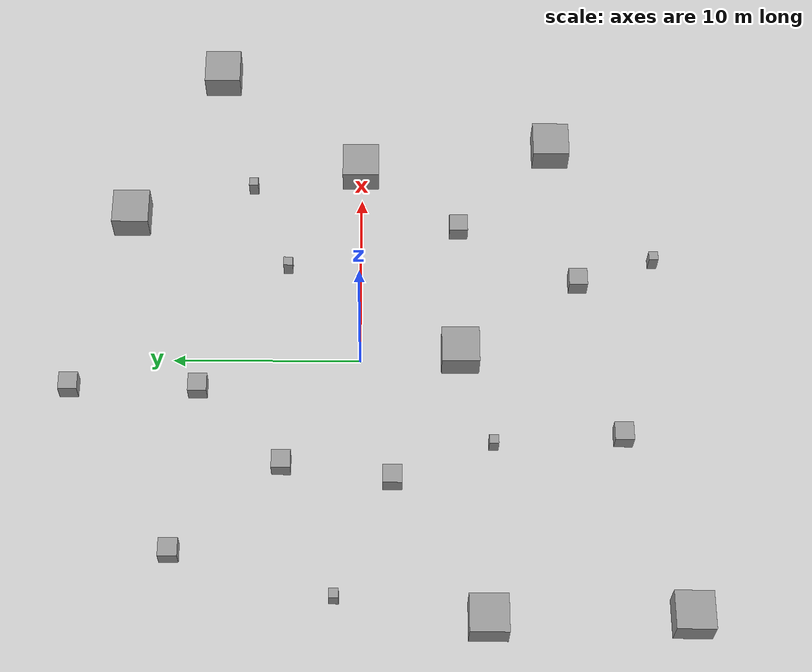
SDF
<sdf version="1.6">
 <world name="default">
  <light name="sun" type="directional">
   <pose>0 0 10 0 -0 0</pose>
   <diffuse>0.8 0.8 0.8 1</diffuse>
   <specular>0.2 0.2 0.2 1</specular>
   <attenuation>
    <range>1000</range>
    <constant>0.9</constant>
    <linear>0.01</linear>
    <quadratic>0.001</quadratic>
   </attenuation>
   <direction>-0.5 0.1 -0.9</direction>
  </light>
  <model name="ground_plane">
   <static>1</static>
   <link name="link">
    <collision name="collision">
     <geometry><plane><normal>0 0 1</normal><size>100 100</size></plane></geometry>
     <surface>
      <contact><collide_bitmask>65535</collide_bitmask></contact>
      <friction><ode><mu>100</mu><mu2>50</mu2></ode></friction>
     </surface>
    </collision>
    <visual name="visual">
     <cast_shadows>0</cast_shadows>
     <geometry><plane><normal>0 0 1</normal><size>100 100</size></plane></geometry>
     <material>
      <script><uri>file://media/materials/scripts/gazebo.material</uri><name>Gazebo/Grey</name></script>
     </material>
    </visual>
   </link>
  </model>
  <gravity>0 0 -9.8</gravity>
  <magnetic_field>6e-06 2.3e-05 -4.2e-05</magnetic_field>
  <atmosphere type="adiabatic"/>
  <physics name="default_physics" default="0" type="ode">
   <max_step_size>0.001</max_step_size>
   <real_time_factor>1</real_time_factor>
   <real_time_update_rate>1000</real_time_update_rate>
  </physics>
  <scene><ambient>0.4 0.4 0.4 1</ambient><background>0.7 0.7 0.7 1</background><shadows>1</shadows></scene>
  <audio><device>default</device></audio>
  <spherical_coordinates>
   <surface_model>EARTH_WGS84</surface_model>
   <latitude_deg>0</latitude_deg>
   <longitude_deg>0</longitude_deg>
   <elevation>0</elevation>
   <heading_deg>0</heading_deg>
  </spherical_coordinates>
  <model name="2x2_cube">
   <link name="link">
    <inertial>
     <mass>1</mass>
     <inertia>
      <ixx>0.166667</ixx>
      <ixy>0</ixy>
      <ixz>0</ixz>
      <iyy>0.166667</iyy>
      <iyz>0</iyz>
      <izz>0.166667</izz>
     </inertia>
    </inertial>
    <visual name="visual">
     <geometry><box><size>2 2 2</size></box></geometry>
     <material>
      <script><name>Gazebo/Grey</name><uri>file://media/materials/scripts/gazebo.material</uri></script>
      <shader type="vertex"><normal_map>__default__</normal_map></shader>
      <ambient>0.3 0.3 0.3 1</ambient>
      <diffuse>0.7 0.7 0.7 1</diffuse>
      <specular>0.01 0.01 0.01 1</specular>
      <emissive>0 0 0 1</emissive>
     </material>
    </visual>
    <collision name="collision">
     <geometry><box><size>1 1 1</size></box></geometry>
     <surface>
      <friction>
       <ode><mu>1</mu><mu2>1</mu2><fdir1>0 0 0</fdir1><slip1>0</slip1><slip2>0</slip2></ode>
       <torsional>
        <coefficient>1</coefficient>
        <patch_radius>0</patch_radius>
        <surface_radius>0</surface_radius>
        <use_patch_radius>1</use_patch_radius>
        <ode><slip>0</slip></ode>
       </torsional>
      </friction>
      <bounce><restitution_coefficient>0</restitution_coefficient><threshold>1e+06</threshold></bounce>
      <contact>
       <collide_without_contact>0</collide_without_contact>
       <collide_without_contact_bitmask>1</collide_without_contact_bitmask>
       <collide_bitmask>1</collide_bitmask>
       <ode>
        <soft_cfm>0</soft_cfm>
        <soft_erp>0.2</soft_erp>
        <kp>1e+13</kp>
        <kd>1</kd>
        <max_vel>0.01</max_vel>
        <min_depth>0</min_depth>
       </ode>
       <bullet>
        <split_impulse>1</split_impulse>
        <split_impulse_penetration_threshold>-0.01</split_impulse_penetration_threshold>
        <soft_cfm>0</soft_cfm>
        <soft_erp>0.2</soft_erp>
        <kp>1e+13</kp>
        <kd>1</kd>
       </bullet>
      </contact>
     </surface>
    </collision>
   </link>
   <static>0</static>
   <pose>0.362319 -5.31285 0.5 0 -0 0</pose>
  </model>
  <model name="2x2_cube_0">
   <link name="link">
    <inertial>
     <mass>1</mass>
     <inertia>
      <ixx>0.166667</ixx>
      <ixy>0</ixy>
      <ixz>0</ixz>
      <iyy>0.166667</iyy>
      <iyz>0</iyz>
      <izz>0.166667</izz>
     </inertia>
    </inertial>
    <visual name="visual">
     <geometry><box><size>2 2 2</size></box></geometry>
     <material>
      <script><name>Gazebo/Grey</name><uri>file://media/materials/scripts/gazebo.material</uri></script>
      <shader type="vertex"><normal_map>__default__</normal_map></shader>
      <ambient>0.3 0.3 0.3 1</ambient>
      <diffuse>0.7 0.7 0.7 1</diffuse>
      <specular>0.01 0.01 0.01 1</specular>
      <emissive>0 0 0 1</emissive>
     </material>
    </visual>
    <collision name="collision">
     <geometry><box><size>1 1 1</size></box></geometry>
     <surface>
      <friction>
       <ode><mu>1</mu><mu2>1</mu2><fdir1>0 0 0</fdir1><slip1>0</slip1><slip2>0</slip2></ode>
       <torsional>
        <coefficient>1</coefficient>
        <patch_radius>0</patch_radius>
        <surface_radius>0</surface_radius>
        <use_patch_radius>1</use_patch_radius>
        <ode><slip>0</slip></ode>
       </torsional>
      </friction>
      <bounce><restitution_coefficient>0</restitution_coefficient><threshold>1e+06</threshold></bounce>
      <contact>
       <collide_without_contact>0</collide_without_contact>
       <collide_without_contact_bitmask>1</collide_without_contact_bitmask>
       <collide_bitmask>1</collide_bitmask>
       <ode>
        <soft_cfm>0</soft_cfm>
        <soft_erp>0.2</soft_erp>
        <kp>1e+13</kp>
        <kd>1</kd>
        <max_vel>0.01</max_vel>
        <min_depth>0</min_depth>
       </ode>
       <bullet>
        <split_impulse>1</split_impulse>
        <split_impulse_penetration_threshold>-0.01</split_impulse_penetration_threshold>
        <soft_cfm>0</soft_cfm>
        <soft_erp>0.2</soft_erp>
        <kp>1e+13</kp>
        <kd>1</kd>
       </bullet>
      </contact>
     </surface>
    </collision>
   </link>
   <static>0</static>
   <pose>11.8545 0.083359 0.5 0 -0 0</pose>
  </model>
  <model name="0.5x0.5_cube">
   <link name="link">
    <inertial>
     <mass>1</mass>
     <inertia>
      <ixx>0.166667</ixx>
      <ixy>0</ixy>
      <ixz>0</ixz>
      <iyy>0.166667</iyy>
      <iyz>0</iyz>
      <izz>0.166667</izz>
     </inertia>
    </inertial>
    <visual name="visual">
     <geometry><box><size>0.5 0.5 1</size></box></geometry>
     <material>
      <script><name>Gazebo/Grey</name><uri>file://media/materials/scripts/gazebo.material</uri></script>
      <shader type="vertex"><normal_map>__default__</normal_map></shader>
      <ambient>0.3 0.3 0.3 1</ambient>
      <diffuse>0.7 0.7 0.7 1</diffuse>
      <specular>0.01 0.01 0.01 1</specular>
      <emissive>0 0 0 1</emissive>
     </material>
    </visual>
    <collision name="collision">
     <geometry><box><size>1 1 1</size></box></geometry>
     <surface>
      <friction>
       <ode><mu>1</mu><mu2>1</mu2><fdir1>0 0 0</fdir1><slip1>0</slip1><slip2>0</slip2></ode>
       <torsional>
        <coefficient>1</coefficient>
        <patch_radius>0</patch_radius>
        <surface_radius>0</surface_radius>
        <use_patch_radius>1</use_patch_radius>
        <ode><slip>0</slip></ode>
       </torsional>
      </friction>
      <bounce><restitution_coefficient>0</restitution_coefficient><threshold>1e+06</threshold></bounce>
      <contact>
       <collide_without_contact>0</collide_without_contact>
       <collide_without_contact_bitmask>1</collide_without_contact_bitmask>
       <collide_bitmask>1</collide_bitmask>
       <ode>
        <soft_cfm>0</soft_cfm>
        <soft_erp>0.2</soft_erp>
        <kp>1e+13</kp>
        <kd>1</kd>
        <max_vel>0.01</max_vel>
        <min_depth>0</min_depth>
       </ode>
       <bullet>
        <split_impulse>1</split_impulse>
        <split_impulse_penetration_threshold>-0.01</split_impulse_penetration_threshold>
        <soft_cfm>0</soft_cfm>
        <soft_erp>0.2</soft_erp>
        <kp>1e+13</kp>
        <kd>1</kd>
       </bullet>
      </contact>
     </surface>
    </collision>
   </link>
   <static>0</static>
   <pose>5.6297 3.99486 0.5 0 -0 0</pose>
  </model>
  <model name="unit_box">
   <pose>-6.86727 -1.70164 0.5 0 -0 0</pose>
   <link name="link">
    <inertial>
     <mass>1</mass>
     <inertia>
      <ixx>0.166667</ixx>
      <ixy>0</ixy>
      <ixz>0</ixz>
      <iyy>0.166667</iyy>
      <iyz>0</iyz>
      <izz>0.166667</izz>
     </inertia>
    </inertial>
    <collision name="collision"><geometry><box><size>1 1 1</size></box></geometry></collision>
    <visual name="visual">
     <geometry><box><size>1 1 1</size></box></geometry>
     <material>
      <script><name>Gazebo/Grey</name><uri>file://media/materials/scripts/gazebo.material</uri></script>
     </material>
    </visual>
   </link>
  </model>
  <model name="unit_box_0">
   <pose>-1.6912 8.60638 0.5 0 -0 0</pose>
   <link name="link">
    <inertial>
     <mass>1</mass>
     <inertia>
      <ixx>0.166667</ixx>
      <ixy>0</ixy>
      <ixz>0</ixz>
      <iyy>0.166667</iyy>
      <iyz>0</iyz>
      <izz>0.166667</izz>
     </inertia>
    </inertial>
    <collision name="collision"><geometry><box><size>1 1 1</size></box></geometry></collision>
    <visual name="visual">
     <geometry><box><size>1 1 1</size></box></geometry>
     <material>
      <script><name>Gazebo/Grey</name><uri>file://media/materials/scripts/gazebo.material</uri></script>
     </material>
    </visual>
   </link>
  </model>
  <model name="unit_box_1">
   <pose>8.10665 -5.3274 0.5 0 -0 0</pose>
   <link name="link">
    <inertial>
     <mass>1</mass>
     <inertia>
      <ixx>0.166667</ixx>
      <ixy>0</ixy>
      <ixz>0</ixz>
      <iyy>0.166667</iyy>
      <iyz>0</iyz>
      <izz>0.166667</izz>
     </inertia>
    </inertial>
    <collision name="collision"><geometry><box><size>1 1 1</size></box></geometry></collision>
    <visual name="visual">
     <geometry><box><size>1 1 1</size></box></geometry>
     <material>
      <script><name>Gazebo/Grey</name><uri>file://media/materials/scripts/gazebo.material</uri></script>
     </material>
    </visual>
   </link>
  </model>
  <model name="unit_box_2">
   <pose>-6.06373 4.07595 0.5 0 -0 0</pose>
   <link name="link">
    <inertial>
     <mass>1</mass>
     <inertia>
      <ixx>0.166667</ixx>
      <ixy>0</ixy>
      <ixz>0</ixz>
      <iyy>0.166667</iyy>
      <iyz>0</iyz>
      <izz>0.166667</izz>
     </inertia>
    </inertial>
    <collision name="collision"><geometry><box><size>1 1 1</size></box></geometry></collision>
    <visual name="visual">
     <geometry><box><size>1 1 1</size></box></geometry>
     <material>
      <script><name>Gazebo/Grey</name><uri>file://media/materials/scripts/gazebo.material</uri></script>
     </material>
    </visual>
   </link>
  </model>
  <model name="0.5x0.5_cube_0">
   <link name="link">
    <inertial>
     <mass>1</mass>
     <inertia>
      <ixx>0.166667</ixx>
      <ixy>0</ixy>
      <ixz>0</ixz>
      <iyy>0.166667</iyy>
      <iyz>0</iyz>
      <izz>0.166667</izz>
     </inertia>
    </inertial>
    <visual name="visual">
     <geometry><box><size>0.5 0.5 1</size></box></geometry>
     <material>
      <script><name>Gazebo/Grey</name><uri>file://media/materials/scripts/gazebo.material</uri></script>
      <shader type="vertex"><normal_map>__default__</normal_map></shader>
      <ambient>0.3 0.3 0.3 1</ambient>
      <diffuse>0.7 0.7 0.7 1</diffuse>
      <specular>0.01 0.01 0.01 1</specular>
      <emissive>0 0 0 1</emissive>
     </material>
    </visual>
    <collision name="collision">
     <geometry><box><size>1 1 1</size></box></geometry>
     <surface>
      <friction>
       <ode><mu>1</mu><mu2>1</mu2><fdir1>0 0 0</fdir1><slip1>0</slip1><slip2>0</slip2></ode>
       <torsional>
        <coefficient>1</coefficient>
        <patch_radius>0</patch_radius>
        <surface_radius>0</surface_radius>
        <use_patch_radius>1</use_patch_radius>
        <ode><slip>0</slip></ode>
       </torsional>
      </friction>
      <bounce><restitution_coefficient>0</restitution_coefficient><threshold>1e+06</threshold></bounce>
      <contact>
       <collide_without_contact>0</collide_without_contact>
       <collide_without_contact_bitmask>1</collide_without_contact_bitmask>
       <collide_bitmask>1</collide_bitmask>
       <ode>
        <soft_cfm>0</soft_cfm>
        <soft_erp>0.2</soft_erp>
        <kp>1e+13</kp>
        <kd>1</kd>
        <max_vel>0.01</max_vel>
        <min_depth>0</min_depth>
       </ode>
       <bullet>
        <split_impulse>1</split_impulse>
        <split_impulse_penetration_threshold>-0.01</split_impulse_penetration_threshold>
        <soft_cfm>0</soft_cfm>
        <soft_erp>0.2</soft_erp>
        <kp>1e+13</kp>
        <kd>1</kd>
       </bullet>
      </contact>
     </surface>
    </collision>
   </link>
   <static>0</static>
   <pose>-4.89927 -6.98036 0.5 0 -0 1.6e-05</pose>
  </model>
  <model name="2x2_cube_1">
   <link name="link">
    <inertial>
     <mass>1</mass>
     <inertia>
      <ixx>0.166667</ixx>
      <ixy>0</ixy>
      <ixz>0</ixz>
      <iyy>0.166667</iyy>
      <iyz>0</iyz>
      <izz>0.166667</izz>
     </inertia>
    </inertial>
    <visual name="visual">
     <geometry><box><size>2 2 2</size></box></geometry>
     <material>
      <script><name>Gazebo/Grey</name><uri>file://media/materials/scripts/gazebo.material</uri></script>
      <shader type="vertex"><normal_map>__default__</normal_map></shader>
      <ambient>0.3 0.3 0.3 1</ambient>
      <diffuse>0.7 0.7 0.7 1</diffuse>
      <specular>0.01 0.01 0.01 1</specular>
      <emissive>0 0 0 1</emissive>
     </material>
    </visual>
    <collision name="collision">
     <geometry><box><size>1 1 1</size></box></geometry>
     <surface>
      <friction>
       <ode><mu>1</mu><mu2>1</mu2><fdir1>0 0 0</fdir1><slip1>0</slip1><slip2>0</slip2></ode>
       <torsional>
        <coefficient>1</coefficient>
        <patch_radius>0</patch_radius>
        <surface_radius>0</surface_radius>
        <use_patch_radius>1</use_patch_radius>
        <ode><slip>0</slip></ode>
       </torsional>
      </friction>
      <bounce><restitution_coefficient>0</restitution_coefficient><threshold>1e+06</threshold></bounce>
      <contact>
       <collide_without_contact>0</collide_without_contact>
       <collide_without_contact_bitmask>1</collide_without_contact_bitmask>
       <collide_bitmask>1</collide_bitmask>
       <ode>
        <soft_cfm>0</soft_cfm>
        <soft_erp>0.2</soft_erp>
        <kp>1e+13</kp>
        <kd>1</kd>
        <max_vel>0.01</max_vel>
        <min_depth>0</min_depth>
       </ode>
       <bullet>
        <split_impulse>1</split_impulse>
        <split_impulse_penetration_threshold>-0.01</split_impulse_penetration_threshold>
        <soft_cfm>0</soft_cfm>
        <soft_erp>0.2</soft_erp>
        <kp>1e+13</kp>
        <kd>1</kd>
       </bullet>
      </contact>
     </surface>
    </collision>
   </link>
   <static>0</static>
   <pose>8.79929 12.7341 0.5 0 -0 0</pose>
  </model>
  <model name="2x2_cube_2">
   <link name="link">
    <inertial>
     <mass>1</mass>
     <inertia>
      <ixx>0.166667</ixx>
      <ixy>0</ixy>
      <ixz>0</ixz>
      <iyy>0.166667</iyy>
      <iyz>0</iyz>
      <izz>0.166667</izz>
     </inertia>
    </inertial>
    <visual name="visual">
     <geometry><box><size>2 2 2</size></box></geometry>
     <material>
      <script><name>Gazebo/Grey</name><uri>file://media/materials/scripts/gazebo.material</uri></script>
      <shader type="vertex"><normal_map>__default__</normal_map></shader>
      <ambient>0.3 0.3 0.3 1</ambient>
      <diffuse>0.7 0.7 0.7 1</diffuse>
      <specular>0.01 0.01 0.01 1</specular>
      <emissive>0 0 0 1</emissive>
     </material>
    </visual>
    <collision name="collision">
     <geometry><box><size>1 1 1</size></box></geometry>
     <surface>
      <friction>
       <ode><mu>1</mu><mu2>1</mu2><fdir1>0 0 0</fdir1><slip1>0</slip1><slip2>0</slip2></ode>
       <torsional>
        <coefficient>1</coefficient>
        <patch_radius>0</patch_radius>
        <surface_radius>0</surface_radius>
        <use_patch_radius>1</use_patch_radius>
        <ode><slip>0</slip></ode>
       </torsional>
      </friction>
      <bounce><restitution_coefficient>0</restitution_coefficient><threshold>1e+06</threshold></bounce>
      <contact>
       <collide_without_contact>0</collide_without_contact>
       <collide_without_contact_bitmask>1</collide_without_contact_bitmask>
       <collide_bitmask>1</collide_bitmask>
       <ode>
        <soft_cfm>0</soft_cfm>
        <soft_erp>0.2</soft_erp>
        <kp>1e+13</kp>
        <kd>1</kd>
        <max_vel>0.01</max_vel>
        <min_depth>0</min_depth>
       </ode>
       <bullet>
        <split_impulse>1</split_impulse>
        <split_impulse_penetration_threshold>-0.01</split_impulse_penetration_threshold>
        <soft_cfm>0</soft_cfm>
        <soft_erp>0.2</soft_erp>
        <kp>1e+13</kp>
        <kd>1</kd>
       </bullet>
      </contact>
     </surface>
    </collision>
   </link>
   <static>0</static>
   <pose>-14.4759 -6.49334 0.5 0 -0 0</pose>
  </model>
  <model name="unit_box_3">
   <pose>-10.9271 9.65845 0.5 0 -0 0</pose>
   <link name="link">
    <inertial>
     <mass>1</mass>
     <inertia>
      <ixx>0.166667</ixx>
      <ixy>0</ixy>
      <ixz>0</ixz>
      <iyy>0.166667</iyy>
      <iyz>0</iyz>
      <izz>0.166667</izz>
     </inertia>
    </inertial>
    <collision name="collision"><geometry><box><size>1 1 1</size></box></geometry></collision>
    <visual name="visual">
     <geometry><box><size>1 1 1</size></box></geometry>
     <material>
      <script><name>Gazebo/Grey</name><uri>file://media/materials/scripts/gazebo.material</uri></script>
     </material>
    </visual>
   </link>
  </model>
  <model name="unit_box_4">
   <pose>-4.40601 -13.7757 0.5 0 -0 0</pose>
   <link name="link">
    <inertial>
     <mass>1</mass>
     <inertia>
      <ixx>0.166667</ixx>
      <ixy>0</ixy>
      <ixz>0</ixz>
      <iyy>0.166667</iyy>
      <iyz>0</iyz>
      <izz>0.166667</izz>
     </inertia>
    </inertial>
    <collision name="collision"><geometry><box><size>1 1 1</size></box></geometry></collision>
    <visual name="visual">
     <geometry><box><size>1 1 1</size></box></geometry>
     <material>
      <script><name>Gazebo/Grey</name><uri>file://media/materials/scripts/gazebo.material</uri></script>
     </material>
    </visual>
   </link>
  </model>
  <model name="unit_box_5">
   <pose>4.74426 -11.7715 0.5 0 -0 0</pose>
   <link name="link">
    <inertial>
     <mass>1</mass>
     <inertia>
      <ixx>0.166667</ixx>
      <ixy>0</ixy>
      <ixz>0</ixz>
      <iyy>0.166667</iyy>
      <iyz>0</iyz>
      <izz>0.166667</izz>
     </inertia>
    </inertial>
    <collision name="collision"><geometry><box><size>1 1 1</size></box></geometry></collision>
    <visual name="visual">
     <geometry><box><size>1 1 1</size></box></geometry>
     <material>
      <script><name>Gazebo/Grey</name><uri>file://media/materials/scripts/gazebo.material</uri></script>
     </material>
    </visual>
   </link>
  </model>
  <model name="0.5x0.5_cube_1">
   <link name="link">
    <inertial>
     <mass>1</mass>
     <inertia>
      <ixx>0.166667</ixx>
      <ixy>0</ixy>
      <ixz>0</ixz>
      <iyy>0.166667</iyy>
      <iyz>0</iyz>
      <izz>0.166667</izz>
     </inertia>
    </inertial>
    <visual name="visual">
     <geometry><box><size>0.5 0.5 1</size></box></geometry>
     <material>
      <script><name>Gazebo/Grey</name><uri>file://media/materials/scripts/gazebo.material</uri></script>
      <shader type="vertex"><normal_map>__default__</normal_map></shader>
      <ambient>0.3 0.3 0.3 1</ambient>
      <diffuse>0.7 0.7 0.7 1</diffuse>
      <specular>0.01 0.01 0.01 1</specular>
      <emissive>0 0 0 1</emissive>
     </material>
    </visual>
    <collision name="collision">
     <geometry><box><size>1 1 1</size></box></geometry>
     <surface>
      <friction>
       <ode><mu>1</mu><mu2>1</mu2><fdir1>0 0 0</fdir1><slip1>0</slip1><slip2>0</slip2></ode>
       <torsional>
        <coefficient>1</coefficient>
        <patch_radius>0</patch_radius>
        <surface_radius>0</surface_radius>
        <use_patch_radius>1</use_patch_radius>
        <ode><slip>0</slip></ode>
       </torsional>
      </friction>
      <bounce><restitution_coefficient>0</restitution_coefficient><threshold>1e+06</threshold></bounce>
      <contact>
       <collide_without_contact>0</collide_without_contact>
       <collide_without_contact_bitmask>1</collide_without_contact_bitmask>
       <collide_bitmask>1</collide_bitmask>
       <ode>
        <soft_cfm>0</soft_cfm>
        <soft_erp>0.2</soft_erp>
        <kp>1e+13</kp>
        <kd>1</kd>
        <max_vel>0.01</max_vel>
        <min_depth>0</min_depth>
       </ode>
       <bullet>
        <split_impulse>1</split_impulse>
        <split_impulse_penetration_threshold>-0.01</split_impulse_penetration_threshold>
        <soft_cfm>0</soft_cfm>
        <soft_erp>0.2</soft_erp>
        <kp>1e+13</kp>
        <kd>1</kd>
       </bullet>
      </contact>
     </surface>
    </collision>
   </link>
   <static>0</static>
   <pose>10.7009 6.04507 0.5 0 -0 0.00016</pose>
  </model>
  <model name="0.5x0.5_cube_2">
   <link name="link">
    <inertial>
     <mass>1</mass>
     <inertia>
      <ixx>0.166667</ixx>
      <ixy>0</ixy>
      <ixz>0</ixz>
      <iyy>0.166667</iyy>
      <iyz>0</iyz>
      <izz>0.166667</izz>
     </inertia>
    </inertial>
    <visual name="visual">
     <geometry><box><size>0.5 0.5 1</size></box></geometry>
     <material>
      <script><name>Gazebo/Grey</name><uri>file://media/materials/scripts/gazebo.material</uri></script>
      <shader type="vertex"><normal_map>__default__</normal_map></shader>
      <ambient>0.3 0.3 0.3 1</ambient>
      <diffuse>0.7 0.7 0.7 1</diffuse>
      <specular>0.01 0.01 0.01 1</specular>
      <emissive>0 0 0 1</emissive>
     </material>
    </visual>
    <collision name="collision">
     <geometry><box><size>1 1 1</size></box></geometry>
     <surface>
      <friction>
       <ode><mu>1</mu><mu2>1</mu2><fdir1>0 0 0</fdir1><slip1>0</slip1><slip2>0</slip2></ode>
       <torsional>
        <coefficient>1</coefficient>
        <patch_radius>0</patch_radius>
        <surface_radius>0</surface_radius>
        <use_patch_radius>1</use_patch_radius>
        <ode><slip>0</slip></ode>
       </torsional>
      </friction>
      <bounce><restitution_coefficient>0</restitution_coefficient><threshold>1e+06</threshold></bounce>
      <contact>
       <collide_without_contact>0</collide_without_contact>
       <collide_without_contact_bitmask>1</collide_without_contact_bitmask>
       <collide_bitmask>1</collide_bitmask>
       <ode>
        <soft_cfm>0</soft_cfm>
        <soft_erp>0.2</soft_erp>
        <kp>1e+13</kp>
        <kd>1</kd>
        <max_vel>0.01</max_vel>
        <min_depth>0</min_depth>
       </ode>
       <bullet>
        <split_impulse>1</split_impulse>
        <split_impulse_penetration_threshold>-0.01</split_impulse_penetration_threshold>
        <soft_cfm>0</soft_cfm>
        <soft_erp>0.2</soft_erp>
        <kp>1e+13</kp>
        <kd>1</kd>
       </bullet>
      </contact>
     </surface>
    </collision>
   </link>
   <static>0</static>
   <pose>-13.3289 1.24456 0.5 0 -0 8e-06</pose>
  </model>
  <model name="2x2_cube_3">
   <link name="link">
    <inertial>
     <mass>1</mass>
     <inertia>
      <ixx>0.166667</ixx>
      <ixy>0</ixy>
      <ixz>0</ixz>
      <iyy>0.166667</iyy>
      <iyz>0</iyz>
      <izz>0.166667</izz>
     </inertia>
    </inertial>
    <visual name="visual">
     <geometry><box><size>2 2 2</size></box></geometry>
     <material>
      <script><name>Gazebo/Grey</name><uri>file://media/materials/scripts/gazebo.material</uri></script>
      <shader type="vertex"><normal_map>__default__</normal_map></shader>
      <ambient>0.3 0.3 0.3 1</ambient>
      <diffuse>0.7 0.7 0.7 1</diffuse>
      <specular>0.01 0.01 0.01 1</specular>
      <emissive>0 0 0 1</emissive>
     </material>
    </visual>
    <collision name="collision">
     <geometry><box><size>1 1 1</size></box></geometry>
     <surface>
      <friction>
       <ode><mu>1</mu><mu2>1</mu2><fdir1>0 0 0</fdir1><slip1>0</slip1><slip2>0</slip2></ode>
       <torsional>
        <coefficient>1</coefficient>
        <patch_radius>0</patch_radius>
        <surface_radius>0</surface_radius>
        <use_patch_radius>1</use_patch_radius>
        <ode><slip>0</slip></ode>
       </torsional>
      </friction>
      <bounce><restitution_coefficient>0</restitution_coefficient><threshold>1e+06</threshold></bounce>
      <contact>
       <collide_without_contact>0</collide_without_contact>
       <collide_without_contact_bitmask>1</collide_without_contact_bitmask>
       <collide_bitmask>1</collide_bitmask>
       <ode>
        <soft_cfm>0</soft_cfm>
        <soft_erp>0.2</soft_erp>
        <kp>1e+13</kp>
        <kd>1</kd>
        <max_vel>0.01</max_vel>
        <min_depth>0</min_depth>
       </ode>
       <bullet>
        <split_impulse>1</split_impulse>
        <split_impulse_penetration_threshold>-0.01</split_impulse_penetration_threshold>
        <soft_cfm>0</soft_cfm>
        <soft_erp>0.2</soft_erp>
        <kp>1e+13</kp>
        <kd>1</kd>
       </bullet>
      </contact>
     </surface>
    </collision>
   </link>
   <static>0</static>
   <pose>13.2819 -10.5599 0.5 0 -0 0</pose>
  </model>
  <model name="unit_box_6">
   <pose>-1.63297 15.4381 0.5 0 -0 0</pose>
   <link name="link">
    <inertial>
     <mass>1</mass>
     <inertia>
      <ixx>0.166667</ixx>
      <ixy>0</ixy>
      <ixz>0</ixz>
      <iyy>0.166667</iyy>
      <iyz>0</iyz>
      <izz>0.166667</izz>
     </inertia>
    </inertial>
    <collision name="collision"><geometry><box><size>1 1 1</size></box></geometry></collision>
    <visual name="visual">
     <geometry><box><size>1 1 1</size></box></geometry>
     <material>
      <script><name>Gazebo/Grey</name><uri>file://media/materials/scripts/gazebo.material</uri></script>
     </material>
    </visual>
   </link>
  </model>
  <model name="2x2_cube_4">
   <link name="link">
    <inertial>
     <mass>1</mass>
     <inertia>
      <ixx>0.166667</ixx>
      <ixy>0</ixy>
      <ixz>0</ixz>
      <iyy>0.166667</iyy>
      <iyz>0</iyz>
      <izz>0.166667</izz>
     </inertia>
    </inertial>
    <visual name="visual">
     <geometry><box><size>2 2 2</size></box></geometry>
     <material>
      <script><name>Gazebo/Grey</name><uri>file://media/materials/scripts/gazebo.material</uri></script>
      <shader type="vertex"><normal_map>__default__</normal_map></shader>
      <ambient>0.3 0.3 0.3 1</ambient>
      <diffuse>0.7 0.7 0.7 1</diffuse>
      <specular>0.01 0.01 0.01 1</specular>
      <emissive>0 0 0 1</emissive>
     </material>
    </visual>
    <collision name="collision">
     <geometry><box><size>1 1 1</size></box></geometry>
     <surface>
      <friction>
       <ode><mu>1</mu><mu2>1</mu2><fdir1>0 0 0</fdir1><slip1>0</slip1><slip2>0</slip2></ode>
       <torsional>
        <coefficient>1</coefficient>
        <patch_radius>0</patch_radius>
        <surface_radius>0</surface_radius>
        <use_patch_radius>1</use_patch_radius>
        <ode><slip>0</slip></ode>
       </torsional>
      </friction>
      <bounce><restitution_coefficient>0</restitution_coefficient><threshold>1e+06</threshold></bounce>
      <contact>
       <collide_without_contact>0</collide_without_contact>
       <collide_without_contact_bitmask>1</collide_without_contact_bitmask>
       <collide_bitmask>1</collide_bitmask>
       <ode>
        <soft_cfm>0</soft_cfm>
        <soft_erp>0.2</soft_erp>
        <kp>1e+13</kp>
        <kd>1</kd>
        <max_vel>0.01</max_vel>
        <min_depth>0</min_depth>
       </ode>
       <bullet>
        <split_impulse>1</split_impulse>
        <split_impulse_penetration_threshold>-0.01</split_impulse_penetration_threshold>
        <soft_cfm>0</soft_cfm>
        <soft_erp>0.2</soft_erp>
        <kp>1e+13</kp>
        <kd>1</kd>
       </bullet>
      </contact>
     </surface>
    </collision>
   </link>
   <static>0</static>
   <pose>-14.2736 -16.6785 0.5 0 -0 0</pose>
  </model>
  <model name="2x2_cube_5">
   <link name="link">
    <inertial>
     <mass>1</mass>
     <inertia>
      <ixx>0.166667</ixx>
      <ixy>0</ixy>
      <ixz>0</ixz>
      <iyy>0.166667</iyy>
      <iyz>0</iyz>
      <izz>0.166667</izz>
     </inertia>
    </inertial>
    <visual name="visual">
     <geometry><box><size>2 2 2</size></box></geometry>
     <material>
      <script><name>Gazebo/Grey</name><uri>file://media/materials/scripts/gazebo.material</uri></script>
      <shader type="vertex"><normal_map>__default__</normal_map></shader>
      <ambient>0.3 0.3 0.3 1</ambient>
      <diffuse>0.7 0.7 0.7 1</diffuse>
      <specular>0.01 0.01 0.01 1</specular>
      <emissive>0 0 0 1</emissive>
     </material>
    </visual>
    <collision name="collision">
     <geometry><box><size>1 1 1</size></box></geometry>
     <surface>
      <friction>
       <ode><mu>1</mu><mu2>1</mu2><fdir1>0 0 0</fdir1><slip1>0</slip1><slip2>0</slip2></ode>
       <torsional>
        <coefficient>1</coefficient>
        <patch_radius>0</patch_radius>
        <surface_radius>0</surface_radius>
        <use_patch_radius>1</use_patch_radius>
        <ode><slip>0</slip></ode>
       </torsional>
      </friction>
      <bounce><restitution_coefficient>0</restitution_coefficient><threshold>1e+06</threshold></bounce>
      <contact>
       <collide_without_contact>0</collide_without_contact>
       <collide_without_contact_bitmask>1</collide_without_contact_bitmask>
       <collide_bitmask>1</collide_bitmask>
       <ode>
        <soft_cfm>0</soft_cfm>
        <soft_erp>0.2</soft_erp>
        <kp>1e+13</kp>
        <kd>1</kd>
        <max_vel>0.01</max_vel>
        <min_depth>0</min_depth>
       </ode>
       <bullet>
        <split_impulse>1</split_impulse>
        <split_impulse_penetration_threshold>-0.01</split_impulse_penetration_threshold>
        <soft_cfm>0</soft_cfm>
        <soft_erp>0.2</soft_erp>
        <kp>1e+13</kp>
        <kd>1</kd>
       </bullet>
      </contact>
     </surface>
    </collision>
   </link>
   <static>0</static>
   <pose>18.1593 8.04087 0.5 0 -0 0</pose>
  </model>
  <model name="0.5x0.5_cube_3">
   <link name="link">
    <inertial>
     <mass>1</mass>
     <inertia>
      <ixx>0.166667</ixx>
      <ixy>0</ixy>
      <ixz>0</ixz>
      <iyy>0.166667</iyy>
      <iyz>0</iyz>
      <izz>0.166667</izz>
     </inertia>
    </inertial>
    <visual name="visual">
     <geometry><box><size>0.5 0.5 1</size></box></geometry>
     <material>
      <script><name>Gazebo/Grey</name><uri>file://media/materials/scripts/gazebo.material</uri></script>
      <shader type="vertex"><normal_map>__default__</normal_map></shader>
      <ambient>0.3 0.3 0.3 1</ambient>
      <diffuse>0.7 0.7 0.7 1</diffuse>
      <specular>0.01 0.01 0.01 1</specular>
      <emissive>0 0 0 1</emissive>
     </material>
    </visual>
    <collision name="collision">
     <geometry><box><size>1 1 1</size></box></geometry>
     <surface>
      <friction>
       <ode><mu>1</mu><mu2>1</mu2><fdir1>0 0 0</fdir1><slip1>0</slip1><slip2>0</slip2></ode>
       <torsional>
        <coefficient>1</coefficient>
        <patch_radius>0</patch_radius>
        <surface_radius>0</surface_radius>
        <use_patch_radius>1</use_patch_radius>
        <ode><slip>0</slip></ode>
       </torsional>
      </friction>
      <bounce><restitution_coefficient>0</restitution_coefficient><threshold>1e+06</threshold></bounce>
      <contact>
       <collide_without_contact>0</collide_without_contact>
       <collide_without_contact_bitmask>1</collide_without_contact_bitmask>
       <collide_bitmask>1</collide_bitmask>
       <ode>
        <soft_cfm>0</soft_cfm>
        <soft_erp>0.2</soft_erp>
        <kp>1e+13</kp>
        <kd>1</kd>
        <max_vel>0.01</max_vel>
        <min_depth>0</min_depth>
       </ode>
       <bullet>
        <split_impulse>1</split_impulse>
        <split_impulse_penetration_threshold>-0.01</split_impulse_penetration_threshold>
        <soft_cfm>0</soft_cfm>
        <soft_erp>0.2</soft_erp>
        <kp>1e+13</kp>
        <kd>1</kd>
       </bullet>
      </contact>
     </surface>
    </collision>
   </link>
   <static>0</static>
   <pose>6.0428 -15.9291 0.5 0 -0 0.003267</pose>
  </model>
 </world>
</sdf>
